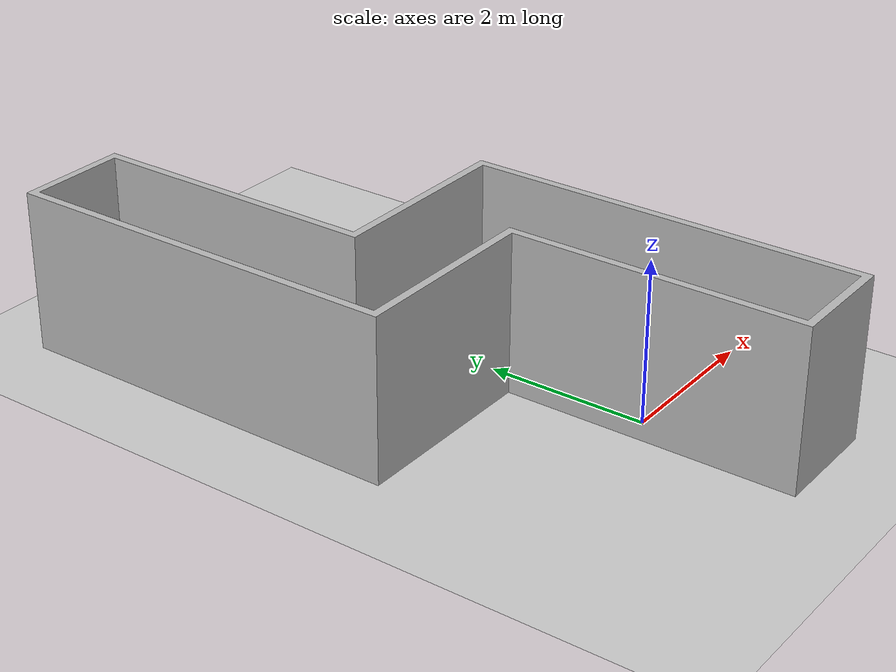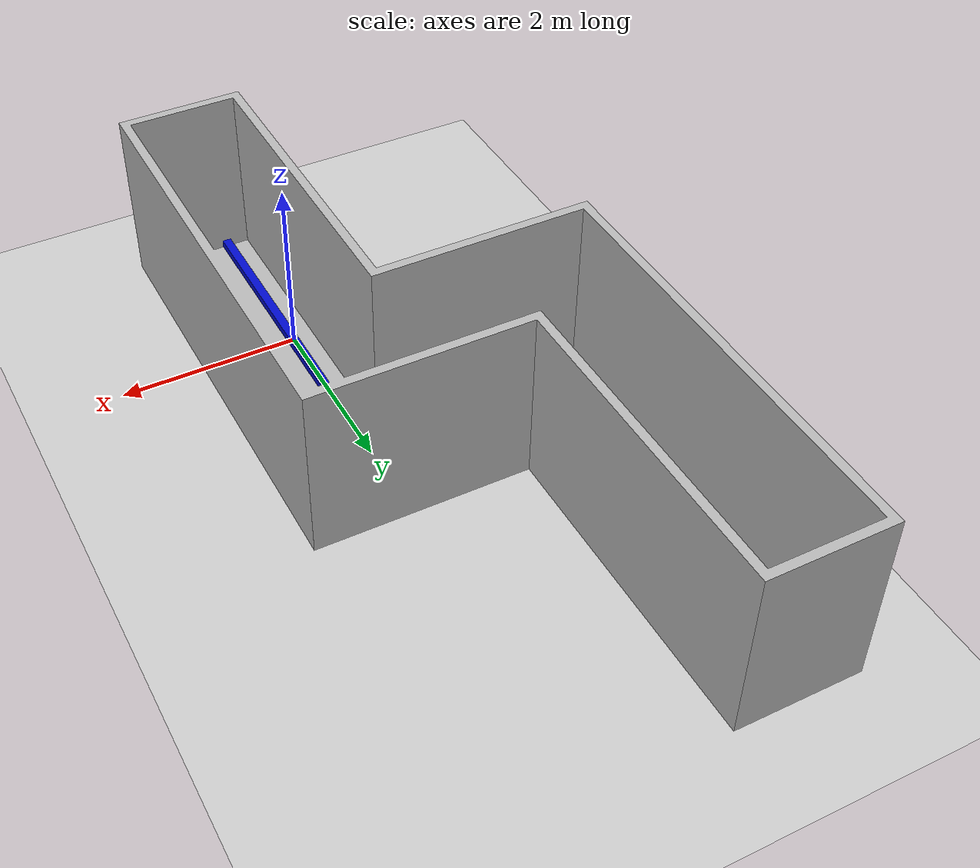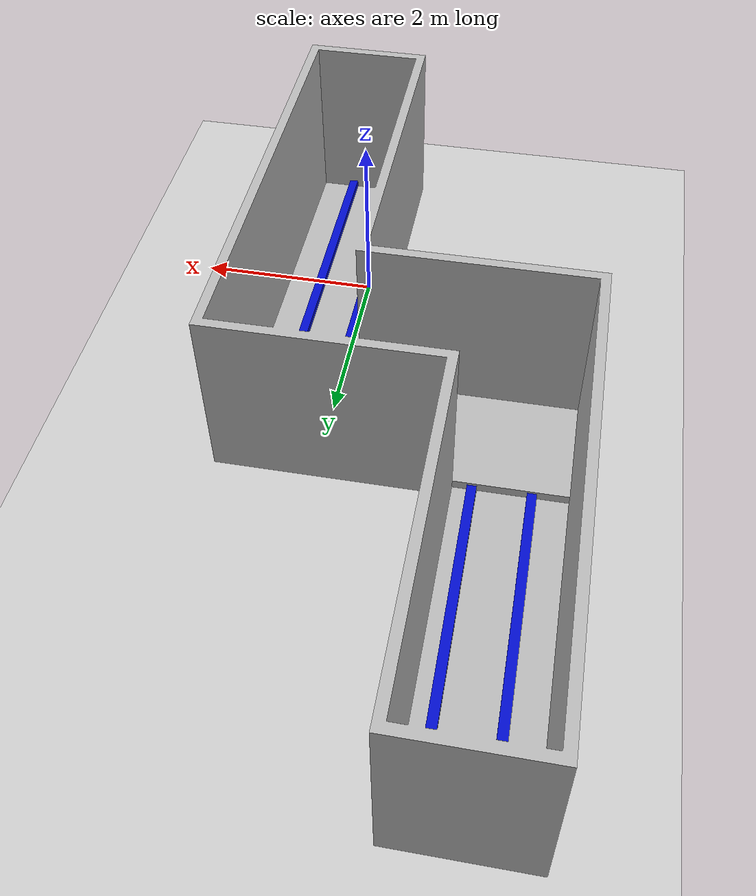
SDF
<sdf version="1.7">
 <world name="default">
  <light name="sun" type="directional">
   <pose>0 0 10 0 -0 0</pose>
   <diffuse>0.8 0.8 0.8 1</diffuse>
   <specular>0.2 0.2 0.2 1</specular>
   <attenuation>
    <range>1000</range>
    <constant>0.9</constant>
    <linear>0.01</linear>
    <quadratic>0.001</quadratic>
   </attenuation>
   <direction>-0.5 0.1 -0.9</direction>
   <spot><inner_angle>0</inner_angle><outer_angle>0</outer_angle><falloff>0</falloff></spot>
  </light>
  <model name="ground_plane">
   <static>1</static>
   <link name="link">
    <collision name="collision">
     <geometry><plane><normal>0 0 1</normal><size>100 100</size></plane></geometry>
     <surface>
      <contact><collide_bitmask>65535</collide_bitmask></contact>
      <friction><ode><mu>100</mu><mu2>50</mu2></ode></friction>
     </surface>
    </collision>
    <visual name="visual">
     <cast_shadows>0</cast_shadows>
     <geometry><plane><normal>0 0 1</normal><size>100 100</size></plane></geometry>
     <material>
      <script><uri>file://media/materials/scripts/gazebo.material</uri><name>Gazebo/Grey</name></script>
     </material>
    </visual>
   </link>
  </model>
  <gravity>0 0 -9.8</gravity>
  <magnetic_field>6e-06 2.3e-05 -4.2e-05</magnetic_field>
  <atmosphere type="adiabatic"/>
  <physics type="ode">
   <max_step_size>0.001</max_step_size>
   <real_time_factor>1</real_time_factor>
   <real_time_update_rate>1000</real_time_update_rate>
  </physics>
  <scene><ambient>0.4 0.4 0.4 1</ambient><background>0.7 0.7 0.7 1</background><shadows>1</shadows></scene>
  <spherical_coordinates>
   <surface_model>EARTH_WGS84</surface_model>
   <latitude_deg>0</latitude_deg>
   <longitude_deg>0</longitude_deg>
   <elevation>0</elevation>
   <heading_deg>0</heading_deg>
  </spherical_coordinates>
  <model name="BlueBarHousing">
   <static>1</static>
   <link name="link">
    <inertial>
     <pose>0 0 0.4 0 -0 0</pose>
     <mass>500</mass>
     <inertia><ixx>51.2096</ixx><iyy>51.2096</iyy><izz>25</izz><ixy>0</ixy><ixz>0</ixz><iyz>0</iyz></inertia>
    </inertial>
    <collision name="collision">
     <geometry><mesh><scale>1 1 1</scale><uri>model://housing/meshes/housing.dae</uri></mesh></geometry>
    </collision>
    <visual name="visual">
     <geometry><mesh><scale>1 1 1</scale><uri>model://housing/meshes/housing.dae</uri></mesh></geometry>
    </visual>
   </link>
   <pose>-0.228239 -1.94246 0 0 -0 0</pose>
  </model>
  <model name="BlueBar3600">
   <static>1</static>
   <link name="link">
    <inertial>
     <pose>0 0 0.4 0 -0 0</pose>
     <mass>500</mass>
     <inertia><ixx>51.2096</ixx><iyy>51.2096</iyy><izz>25</izz><ixy>0</ixy><ixz>0</ixz><iyz>0</iyz></inertia>
    </inertial>
    <collision name="collision">
     <geometry><mesh><scale>1 1 1</scale><uri>model://bar3600/meshes/bar3600.dae</uri></mesh></geometry>
    </collision>
    <visual name="visual">
     <geometry><mesh><scale>1 1 1</scale><uri>model://bar3600/meshes/bar3600.dae</uri></mesh></geometry>
    </visual>
   </link>
   <pose>0.532066 -1.92967 0 0 -0 0</pose>
  </model>
  <model name="BlueBar3600_0">
   <static>1</static>
   <link name="link">
    <inertial>
     <pose>0 0 0.4 0 -0 0</pose>
     <mass>500</mass>
     <inertia><ixx>51.2096</ixx><iyy>51.2096</iyy><izz>25</izz><ixy>0</ixy><ixz>0</ixz><iyz>0</iyz></inertia>
    </inertial>
    <collision name="collision">
     <geometry><mesh><scale>1 1 1</scale><uri>model://bar3600/meshes/bar3600.dae</uri></mesh></geometry>
    </collision>
    <visual name="visual">
     <geometry><mesh><scale>1 1 1</scale><uri>model://bar3600/meshes/bar3600.dae</uri></mesh></geometry>
    </visual>
   </link>
   <pose>-0.017543 -1.94107 0 0 -0 0</pose>
  </model>
  <model name="BlueBar3600_1">
   <static>1</static>
   <link name="link">
    <inertial>
     <pose>0 0 0.4 0 -0 0</pose>
     <mass>500</mass>
     <inertia><ixx>51.2096</ixx><iyy>51.2096</iyy><izz>25</izz><ixy>0</ixy><ixz>0</ixz><iyz>0</iyz></inertia>
    </inertial>
    <collision name="collision">
     <geometry><mesh><scale>1 1 1</scale><uri>model://bar3600/meshes/bar3600.dae</uri></mesh></geometry>
    </collision>
    <visual name="visual">
     <geometry><mesh><scale>1 1 1</scale><uri>model://bar3600/meshes/bar3600.dae</uri></mesh></geometry>
    </visual>
   </link>
   <pose>-1.68413 2.87322 0 0 -0 0</pose>
  </model>
  <model name="BlueBar3600_2">
   <static>1</static>
   <link name="link">
    <inertial>
     <pose>0 0 0.4 0 -0 0</pose>
     <mass>500</mass>
     <inertia><ixx>51.2096</ixx><iyy>51.2096</iyy><izz>25</izz><ixy>0</ixy><ixz>0</ixz><iyz>0</iyz></inertia>
    </inertial>
    <collision name="collision">
     <geometry><mesh><scale>1 1 1</scale><uri>model://bar3600/meshes/bar3600.dae</uri></mesh></geometry>
    </collision>
    <visual name="visual">
     <geometry><mesh><scale>1 1 1</scale><uri>model://bar3600/meshes/bar3600.dae</uri></mesh></geometry>
    </visual>
   </link>
   <pose>-2.29862 2.87015 0 0 -0 0</pose>
  </model>
 </world>
</sdf>
